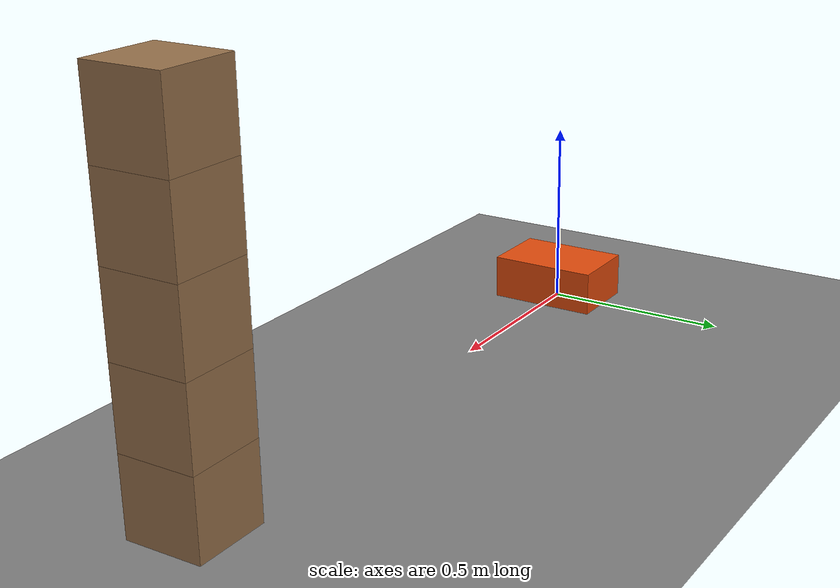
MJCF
<mujoco model="five_blocks_topple_after_a_push">
  <compiler angle="radian"/>
  <option timestep="0.002"/>
  <worldbody>
    <geom name="floor" type="plane" size="8 8 0.1" friction="0.35 0.005 0.002"/>
    <body name="block1" pos="1.6 0 0.1">
      <freejoint/>
      <geom name="block1" type="box" pos="0 0 0" size="0.1 0.1 0.1" mass="1" friction="0.65 0.005 0.002" solref="0.01 1" rgba="0.6 0.45 0.3 1"/>
    </body>
    <body name="block2" pos="1.6 0 0.3">
      <freejoint/>
      <geom name="block2" type="box" pos="0 0 0" size="0.1 0.1 0.1" mass="1" friction="0.65 0.005 0.002" solref="0.01 1" rgba="0.6 0.45 0.3 1"/>
    </body>
    <body name="block3" pos="1.6 0 0.5">
      <freejoint/>
      <geom name="block3" type="box" pos="0 0 0" size="0.1 0.1 0.1" mass="1" friction="0.65 0.005 0.002" solref="0.01 1" rgba="0.6 0.45 0.3 1"/>
    </body>
    <body name="block4" pos="1.6 0 0.7">
      <freejoint/>
      <geom name="block4" type="box" pos="0 0 0" size="0.1 0.1 0.1" mass="1" friction="0.65 0.005 0.002" solref="0.01 1" rgba="0.6 0.45 0.3 1"/>
    </body>
    <body name="block5" pos="1.6 0 0.9">
      <freejoint/>
      <geom name="block5" type="box" pos="0 0 0" size="0.1 0.1 0.1" mass="1" friction="0.65 0.005 0.002" solref="0.01 1" rgba="0.6 0.45 0.3 1"/>
    </body>
    <body name="pusher" pos="0 0 0.06">
      <freejoint/>
      <geom name="pusher" type="box" pos="0 0 0" size="0.1 0.15 0.06" mass="10" friction="0.05 0.005 0.002" solref="0.01 1" rgba="0.9 0.3 0.05 1"/>
    </body>
  </worldbody>
  <keyframe>
    <key name="start" qpos="1.6 0 0.1 1 0 0 0 1.6 0 0.3 1 0 0 0 1.6 0 0.5 1 0 0 0 1.6 0 0.7 1 0 0 0 1.6 0 0.9 1 0 0 0 0 0 0.06 1 0 0 0" qvel="0 0 0 0 0 0 0 0 0 0 0 0 0 0 0 0 0 0 0 0 0 0 0 0 0 0 0 0 0 0 4 0 0 0 0 0"/>
  </keyframe>
</mujoco>
